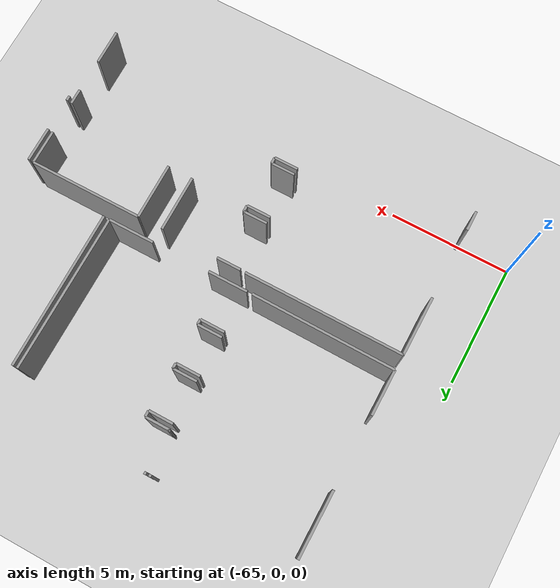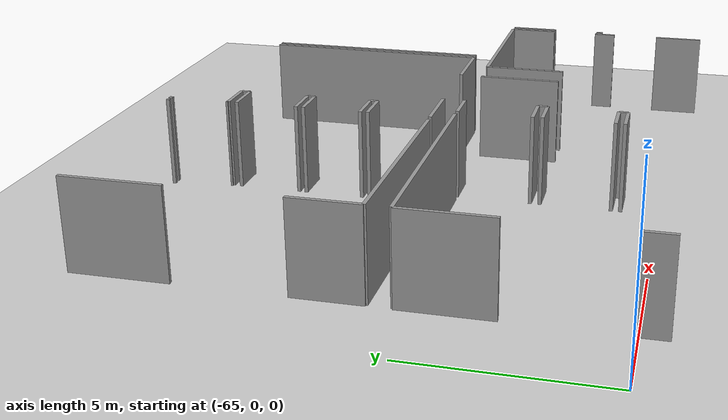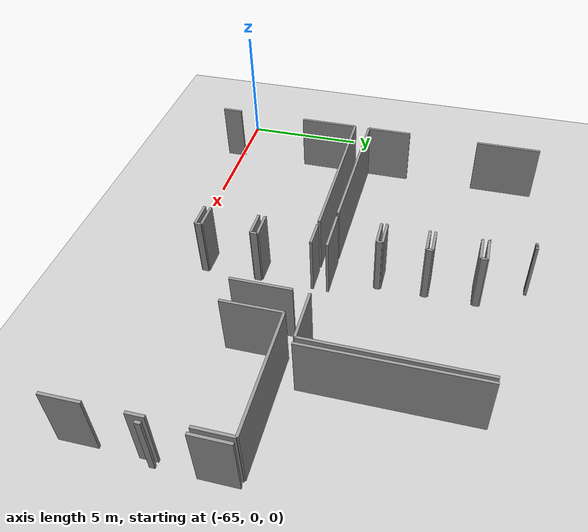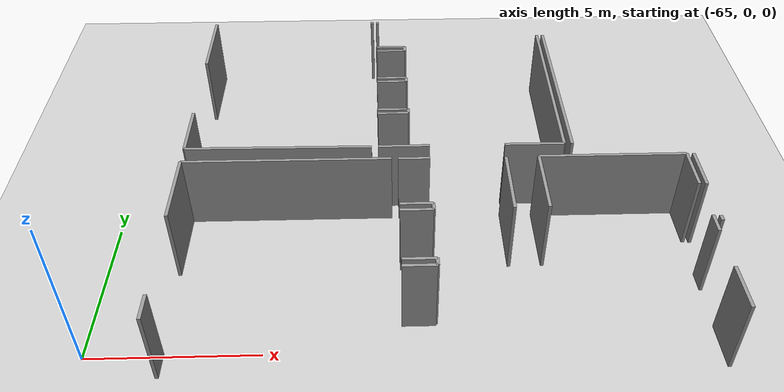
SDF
<sdf version="1.6">
 <world name="default">
  <model name="ground_plane">
   <static>1</static>
   <link name="link">
    <collision name="collision">
     <geometry><plane><normal>0 0 1</normal><size>100 100</size></plane></geometry>
     <surface><friction><ode><mu>100</mu><mu2>50</mu2></ode></friction></surface>
    </collision>
    <visual name="visual">
     <cast_shadows>0</cast_shadows>
     <geometry><plane><normal>0 0 1</normal><size>100 100</size></plane></geometry>
     <material>
      <script><uri>file://media/materials/scripts/gazebo.material</uri><name>Gazebo/Grey</name></script>
     </material>
    </visual>
   </link>
  </model>
  <model name="50010539">
   <static>1</static>
   <link name="Wall_23">
    <collision name="Wall_23_Collision">
     <geometry><box><size>6.4226010518 0.1 2.5</size></box></geometry>
     <pose>3.2113005259 0 1.25 0 0 0</pose>
    </collision>
    <visual name="Wall_23_Visual">
     <pose>3.2113005259 0 1.25 0 0 0</pose>
     <geometry><box><size>6.4226010518 0.1 2.5</size></box></geometry>
     <material>
      <script><uri>file://media/materials/scripts/gazebo.material</uri><name>Gazebo/Grey</name></script>
      <ambient>1 1 1 1</ambient>
     </material>
    </visual>
    <pose>12.1843957217 -16.7629125276 0 0 0 1.57079632679</pose>
   </link>
   <link name="Wall_29">
    <collision name="Wall_29_Collision">
     <geometry><box><size>0.101750463657 0.1 2.5</size></box></geometry>
     <pose>0.0508752318285 0 1.25 0 0 0</pose>
    </collision>
    <visual name="Wall_29_Visual">
     <pose>0.0508752318285 0 1.25 0 0 0</pose>
     <geometry><box><size>0.101750463657 0.1 2.5</size></box></geometry>
     <material>
      <script><uri>file://media/materials/scripts/gazebo.material</uri><name>Gazebo/Grey</name></script>
      <ambient>1 1 1 1</ambient>
     </material>
    </visual>
    <pose>5.87434262341 -9.3689184726 0 0 0 1.57079632679</pose>
   </link>
   <link name="Wall_31">
    <collision name="Wall_31_Collision">
     <geometry><box><size>2.65097431468 0.1 2.5</size></box></geometry>
     <pose>1.32548715734 0 1.25 0 0 0</pose>
    </collision>
    <visual name="Wall_31_Visual">
     <pose>1.32548715734 0 1.25 0 0 0</pose>
     <geometry><box><size>2.65097431468 0.1 2.5</size></box></geometry>
     <material>
      <script><uri>file://media/materials/scripts/gazebo.material</uri><name>Gazebo/Grey</name></script>
      <ambient>1 1 1 1</ambient>
     </material>
    </visual>
    <pose>0.0166408373771 -9.26716800894 0 0 0 -1.57079632679</pose>
   </link>
   <link name="Wall_32">
    <collision name="Wall_32_Collision">
     <geometry><box><size>1.85424658926 0.1 2.5</size></box></geometry>
     <pose>0.927123294632 0 1.25 0 0 0</pose>
    </collision>
    <visual name="Wall_32_Visual">
     <pose>0.927123294632 0 1.25 0 0 0</pose>
     <geometry><box><size>1.85424658926 0.1 2.5</size></box></geometry>
     <material>
      <script><uri>file://media/materials/scripts/gazebo.material</uri><name>Gazebo/Grey</name></script>
      <ambient>1 1 1 1</ambient>
     </material>
    </visual>
    <pose>0.0166408373771 -14.8506135515 0 0 0 -1.57079632679</pose>
   </link>
   <link name="Wall_33">
    <collision name="Wall_33_Collision">
     <geometry><box><size>5.85789444382 0.1 2.5</size></box></geometry>
     <pose>2.92894722191 0 1.25 0 0 0</pose>
    </collision>
    <visual name="Wall_33_Visual">
     <pose>2.92894722191 0 1.25 0 0 0</pose>
     <geometry><box><size>5.85789444382 0.1 2.5</size></box></geometry>
     <material>
      <script><uri>file://media/materials/scripts/gazebo.material</uri><name>Gazebo/Grey</name></script>
      <ambient>1 1 1 1</ambient>
     </material>
    </visual>
    <pose>0.0166408373771 -16.7048601407 0 0 0 -0.00811033330518</pose>
   </link>
   <link name="Wall_34">
    <collision name="Wall_34_Collision">
     <geometry><box><size>1.87749294987 0.1 2.5</size></box></geometry>
     <pose>0.938746474937 0 1.25 0 0 0</pose>
    </collision>
    <visual name="Wall_34_Visual">
     <pose>0.938746474937 0 1.25 0 0 0</pose>
     <geometry><box><size>1.87749294987 0.1 2.5</size></box></geometry>
     <material>
      <script><uri>file://media/materials/scripts/gazebo.material</uri><name>Gazebo/Grey</name></script>
      <ambient>1 1 1 1</ambient>
     </material>
    </visual>
    <pose>11.9382129519 -16.7394121084 0 0 0 3.14159265359</pose>
   </link>
   <link name="Wall_35">
    <collision name="Wall_35_Collision">
     <geometry><box><size>1.62038566093 0.1 2.5</size></box></geometry>
     <pose>0.810192830467 0 1.25 0 0 0</pose>
    </collision>
    <visual name="Wall_35_Visual">
     <pose>0.810192830467 0 1.25 0 0 0</pose>
     <geometry><box><size>1.62038566093 0.1 2.5</size></box></geometry>
     <material>
      <script><uri>file://media/materials/scripts/gazebo.material</uri><name>Gazebo/Grey</name></script>
      <ambient>1 1 1 1</ambient>
     </material>
    </visual>
    <pose>7.69251289347 -16.7394121084 0 0 0 3.14159265359</pose>
   </link>
   <link name="Wall_36">
    <collision name="Wall_36_Collision">
     <geometry><box><size>0.997815096161 0.1 2.5</size></box></geometry>
     <pose>0.498907548081 0 1.25 0 0 0</pose>
    </collision>
    <visual name="Wall_36_Visual">
     <pose>0.498907548081 0 1.25 0 0 0</pose>
     <geometry><box><size>0.997815096161 0.1 2.5</size></box></geometry>
     <material>
      <script><uri>file://media/materials/scripts/gazebo.material</uri><name>Gazebo/Grey</name></script>
      <ambient>1 1 1 1</ambient>
     </material>
    </visual>
    <pose>6.07212723254 -15.014735398 0 0 0 0.0</pose>
   </link>
   <link name="Wall_37">
    <collision name="Wall_37_Collision">
     <geometry><box><size>0.208455069739 0.1 2.5</size></box></geometry>
     <pose>0.10422753487 0 1.25 0 0 0</pose>
    </collision>
    <visual name="Wall_37_Visual">
     <pose>0.10422753487 0 1.25 0 0 0</pose>
     <geometry><box><size>0.208455069739 0.1 2.5</size></box></geometry>
     <material>
      <script><uri>file://media/materials/scripts/gazebo.material</uri><name>Gazebo/Grey</name></script>
      <ambient>1 1 1 1</ambient>
     </material>
    </visual>
    <pose>7.0699423287 -15.014735398 0 0 0 1.57079632679</pose>
   </link>
   <link name="Wall_38">
    <collision name="Wall_38_Collision">
     <geometry><box><size>1.01674246081 0.1 2.5</size></box></geometry>
     <pose>0.508371230406 0 1.25 0 0 0</pose>
    </collision>
    <visual name="Wall_38_Visual">
     <pose>0.508371230406 0 1.25 0 0 0</pose>
     <geometry><box><size>1.01674246081 0.1 2.5</size></box></geometry>
     <material>
      <script><uri>file://media/materials/scripts/gazebo.material</uri><name>Gazebo/Grey</name></script>
      <ambient>1 1 1 1</ambient>
     </material>
    </visual>
    <pose>7.0699423287 -14.8062803282 0 0 0 3.14159265359</pose>
   </link>
   <link name="Wall_39">
    <collision name="Wall_39_Collision">
     <geometry><box><size>0.999720535555 0.1 2.5</size></box></geometry>
     <pose>0.499860267778 0 1.25 0 0 0</pose>
    </collision>
    <visual name="Wall_39_Visual">
     <pose>0.499860267778 0 1.25 0 0 0</pose>
     <geometry><box><size>0.999720535555 0.1 2.5</size></box></geometry>
     <material>
      <script><uri>file://media/materials/scripts/gazebo.material</uri><name>Gazebo/Grey</name></script>
      <ambient>1 1 1 1</ambient>
     </material>
    </visual>
    <pose>6.05319986789 -13.1913569269 0 0 0 0.0</pose>
   </link>
   <link name="Wall_40">
    <collision name="Wall_40_Collision">
     <geometry><box><size>0.214171387922 0.1 2.5</size></box></geometry>
     <pose>0.107085693961 0 1.25 0 0 0</pose>
    </collision>
    <visual name="Wall_40_Visual">
     <pose>0.107085693961 0 1.25 0 0 0</pose>
     <geometry><box><size>0.214171387922 0.1 2.5</size></box></geometry>
     <material>
      <script><uri>file://media/materials/scripts/gazebo.material</uri><name>Gazebo/Grey</name></script>
      <ambient>1 1 1 1</ambient>
     </material>
    </visual>
    <pose>7.05292040345 -13.1913569269 0 0 0 1.57079632679</pose>
   </link>
   <link name="Wall_41">
    <collision name="Wall_41_Collision">
     <geometry><box><size>0.988541957775 0.1 2.5</size></box></geometry>
     <pose>0.494270978888 0 1.25 0 0 0</pose>
    </collision>
    <visual name="Wall_41_Visual">
     <pose>0.494270978888 0 1.25 0 0 0</pose>
     <geometry><box><size>0.988541957775 0.1 2.5</size></box></geometry>
     <material>
      <script><uri>file://media/materials/scripts/gazebo.material</uri><name>Gazebo/Grey</name></script>
      <ambient>1 1 1 1</ambient>
     </material>
    </visual>
    <pose>7.05292040345 -12.977185539 0 0 0 3.14159265359</pose>
   </link>
   <link name="Wall_42">
    <collision name="Wall_42_Collision">
     <geometry><box><size>0.994004217373 0.1 2.5</size></box></geometry>
     <pose>0.497002108686 0 1.25 0 0 0</pose>
    </collision>
    <visual name="Wall_42_Visual">
     <pose>0.497002108686 0 1.25 0 0 0</pose>
     <geometry><box><size>0.994004217373 0.1 2.5</size></box></geometry>
     <material>
      <script><uri>file://media/materials/scripts/gazebo.material</uri><name>Gazebo/Grey</name></script>
      <ambient>1 1 1 1</ambient>
     </material>
    </visual>
    <pose>6.06437844567 -11.2582251467 0 0 0 0.0</pose>
   </link>
   <link name="Wall_43">
    <collision name="Wall_43_Collision">
     <geometry><box><size>0.2416097152 0.1 2.5</size></box></geometry>
     <pose>0.1208048576 0 1.25 0 0 0</pose>
    </collision>
    <visual name="Wall_43_Visual">
     <pose>0.1208048576 0 1.25 0 0 0</pose>
     <geometry><box><size>0.2416097152 0.1 2.5</size></box></geometry>
     <material>
      <script><uri>file://media/materials/scripts/gazebo.material</uri><name>Gazebo/Grey</name></script>
      <ambient>1 1 1 1</ambient>
     </material>
    </visual>
    <pose>7.05838266304 -11.2582251467 0 0 0 1.57079632679</pose>
   </link>
   <link name="Wall_44">
    <collision name="Wall_44_Collision">
     <geometry><box><size>0.988541957775 0.1 2.5</size></box></geometry>
     <pose>0.494270978888 0 1.25 0 0 0</pose>
    </collision>
    <visual name="Wall_44_Visual">
     <pose>0.494270978888 0 1.25 0 0 0</pose>
     <geometry><box><size>0.988541957775 0.1 2.5</size></box></geometry>
     <material>
      <script><uri>file://media/materials/scripts/gazebo.material</uri><name>Gazebo/Grey</name></script>
      <ambient>1 1 1 1</ambient>
     </material>
    </visual>
    <pose>7.05838266304 -11.0166154315 0 0 0 3.14159265359</pose>
   </link>
   <link name="Wall_45">
    <collision name="Wall_45_Collision">
     <geometry><box><size>0.0603389141536 0.1 2.5</size></box></geometry>
     <pose>0.0301694570768 0 1.25 0 0 0</pose>
    </collision>
    <visual name="Wall_45_Visual">
     <pose>0.0301694570768 0 1.25 0 0 0</pose>
     <geometry><box><size>0.0603389141536 0.1 2.5</size></box></geometry>
     <material>
      <script><uri>file://media/materials/scripts/gazebo.material</uri><name>Gazebo/Grey</name></script>
      <ambient>1 1 1 1</ambient>
     </material>
    </visual>
    <pose>6.06984070527 -11.0166154315 0 0 0 1.57079632679</pose>
   </link>
   <link name="Wall_46">
    <collision name="Wall_46_Collision">
     <geometry><box><size>0.108991133355 0.1 2.5</size></box></geometry>
     <pose>0.0544955666777 0 1.25 0 0 0</pose>
    </collision>
    <visual name="Wall_46_Visual">
     <pose>0.0544955666777 0 1.25 0 0 0</pose>
     <geometry><box><size>0.108991133355 0.1 2.5</size></box></geometry>
     <material>
      <script><uri>file://media/materials/scripts/gazebo.material</uri><name>Gazebo/Grey</name></script>
      <ambient>1 1 1 1</ambient>
     </material>
    </visual>
    <pose>6.06984070527 -9.3689184726 0 0 0 1.57079632679</pose>
   </link>
   <link name="Wall_61">
    <collision name="Wall_61_Collision">
     <geometry><box><size>6.3992202395 0.1 2.5</size></box></geometry>
     <pose>3.19961011975 0 1.25 0 0 0</pose>
    </collision>
    <visual name="Wall_61_Visual">
     <pose>3.19961011975 0 1.25 0 0 0</pose>
     <geometry><box><size>6.3992202395 0.1 2.5</size></box></geometry>
     <material>
      <script><uri>file://media/materials/scripts/gazebo.material</uri><name>Gazebo/Grey</name></script>
      <ambient>1 1 1 1</ambient>
     </material>
    </visual>
    <pose>11.9773379741 -10.3403114758 0 0 0 -1.57691039453</pose>
   </link>
   <link name="Wall_63">
    <collision name="Wall_63_Collision">
     <geometry><box><size>2.28716241965 0.1 2.5</size></box></geometry>
     <pose>1.14358120983 0 1.25 0 0 0</pose>
    </collision>
    <visual name="Wall_63_Visual">
     <pose>1.14358120983 0 1.25 0 0 0</pose>
     <geometry><box><size>2.28716241965 0.1 2.5</size></box></geometry>
     <material>
      <script><uri>file://media/materials/scripts/gazebo.material</uri><name>Gazebo/Grey</name></script>
      <ambient>1 1 1 1</ambient>
     </material>
    </visual>
    <pose>10.0250247707 -19.6386016615 0 0 0 1.57079632679</pose>
   </link>
   <link name="Wall_64">
    <collision name="Wall_64_Collision">
     <geometry><box><size>0.985366225452 0.1 2.5</size></box></geometry>
     <pose>0.492683112726 0 1.25 0 0 0</pose>
    </collision>
    <visual name="Wall_64_Visual">
     <pose>0.492683112726 0 1.25 0 0 0</pose>
     <geometry><box><size>0.985366225452 0.1 2.5</size></box></geometry>
     <material>
      <script><uri>file://media/materials/scripts/gazebo.material</uri><name>Gazebo/Grey</name></script>
      <ambient>1 1 1 1</ambient>
     </material>
    </visual>
    <pose>7.6758720561 -17.3514392419 0 0 0 3.14159265359</pose>
   </link>
   <link name="Wall_65">
    <collision name="Wall_65_Collision">
     <geometry><box><size>0.982952668885 0.1 2.5</size></box></geometry>
     <pose>0.491476334443 0 1.25 0 0 0</pose>
    </collision>
    <visual name="Wall_65_Visual">
     <pose>0.491476334443 0 1.25 0 0 0</pose>
     <geometry><box><size>0.982952668885 0.1 2.5</size></box></geometry>
     <material>
      <script><uri>file://media/materials/scripts/gazebo.material</uri><name>Gazebo/Grey</name></script>
      <ambient>1 1 1 1</ambient>
     </material>
    </visual>
    <pose>6.69050583064 -19.3971189756 0 0 0 0.0</pose>
   </link>
   <link name="Wall_66">
    <collision name="Wall_66_Collision">
     <geometry><box><size>0.263712812174 0.1 2.5</size></box></geometry>
     <pose>0.131856406087 0 1.25 0 0 0</pose>
    </collision>
    <visual name="Wall_66_Visual">
     <pose>0.131856406087 0 1.25 0 0 0</pose>
     <geometry><box><size>0.263712812174 0.1 2.5</size></box></geometry>
     <material>
      <script><uri>file://media/materials/scripts/gazebo.material</uri><name>Gazebo/Grey</name></script>
      <ambient>1 1 1 1</ambient>
     </material>
    </visual>
    <pose>7.67345849953 -19.3971189756 0 0 0 -1.57079632679</pose>
   </link>
   <link name="Wall_67">
    <collision name="Wall_67_Collision">
     <geometry><box><size>0.982952668885 0.1 2.5</size></box></geometry>
     <pose>0.491476334443 0 1.25 0 0 0</pose>
    </collision>
    <visual name="Wall_67_Visual">
     <pose>0.491476334443 0 1.25 0 0 0</pose>
     <geometry><box><size>0.982952668885 0.1 2.5</size></box></geometry>
     <material>
      <script><uri>file://media/materials/scripts/gazebo.material</uri><name>Gazebo/Grey</name></script>
      <ambient>1 1 1 1</ambient>
     </material>
    </visual>
    <pose>7.67345849953 -19.6608317878 0 0 0 3.14159265359</pose>
   </link>
   <link name="Wall_68">
    <collision name="Wall_68_Collision">
     <geometry><box><size>0.979903965855 0.1 2.5</size></box></geometry>
     <pose>0.489951982927 0 1.25 0 0 0</pose>
    </collision>
    <visual name="Wall_68_Visual">
     <pose>0.489951982927 0 1.25 0 0 0</pose>
     <geometry><box><size>0.979903965855 0.1 2.5</size></box></geometry>
     <material>
      <script><uri>file://media/materials/scripts/gazebo.material</uri><name>Gazebo/Grey</name></script>
      <ambient>1 1 1 1</ambient>
     </material>
    </visual>
    <pose>6.69050583064 -21.5976474175 0 0 0 0.0</pose>
   </link>
   <link name="Wall_69">
    <collision name="Wall_69_Collision">
     <geometry><box><size>0.249231472778 0.1 2.5</size></box></geometry>
     <pose>0.124615736389 0 1.25 0 0 0</pose>
    </collision>
    <visual name="Wall_69_Visual">
     <pose>0.124615736389 0 1.25 0 0 0</pose>
     <geometry><box><size>0.249231472778 0.1 2.5</size></box></geometry>
     <material>
      <script><uri>file://media/materials/scripts/gazebo.material</uri><name>Gazebo/Grey</name></script>
      <ambient>1 1 1 1</ambient>
     </material>
    </visual>
    <pose>7.6704097965 -21.5976474175 0 0 0 -1.57079632679</pose>
   </link>
   <link name="Wall_70">
    <collision name="Wall_70_Collision">
     <geometry><box><size>0.980030995147 0.1 2.5</size></box></geometry>
     <pose>0.490015497574 0 1.25 0 0 0</pose>
    </collision>
    <visual name="Wall_70_Visual">
     <pose>0.490015497574 0 1.25 0 0 0</pose>
     <geometry><box><size>0.980030995147 0.1 2.5</size></box></geometry>
     <material>
      <script><uri>file://media/materials/scripts/gazebo.material</uri><name>Gazebo/Grey</name></script>
      <ambient>1 1 1 1</ambient>
     </material>
    </visual>
    <pose>7.6704097965 -21.8468788903 0 0 0 3.14159265359</pose>
   </link>
   <link name="Wall_74">
    <collision name="Wall_74_Collision">
     <geometry><box><size>6.48954548919 0.1 2.5</size></box></geometry>
     <pose>3.24477274459 0 1.25 0 0 0</pose>
    </collision>
    <visual name="Wall_74_Visual">
     <pose>3.24477274459 0 1.25 0 0 0</pose>
     <geometry><box><size>6.48954548919 0.1 2.5</size></box></geometry>
     <material>
      <script><uri>file://media/materials/scripts/gazebo.material</uri><name>Gazebo/Grey</name></script>
      <ambient>1 1 1 1</ambient>
     </material>
    </visual>
    <pose>6.48954548919 -17.3378471075 0 0 0 3.14159265359</pose>
   </link>
   <link name="Wall_75">
    <collision name="Wall_75_Collision">
     <geometry><box><size>2.4072051015 0.1 2.5</size></box></geometry>
     <pose>1.20360255075 0 1.25 0 0 0</pose>
    </collision>
    <visual name="Wall_75_Visual">
     <pose>1.20360255075 0 1.25 0 0 0</pose>
     <geometry><box><size>2.4072051015 0.1 2.5</size></box></geometry>
     <material>
      <script><uri>file://media/materials/scripts/gazebo.material</uri><name>Gazebo/Grey</name></script>
      <ambient>1 1 1 1</ambient>
     </material>
    </visual>
    <pose>0.0 -17.3378471075 0 0 0 -1.57079632679</pose>
   </link>
   <link name="Wall_76">
    <collision name="Wall_76_Collision">
     <geometry><box><size>0.822133584004 0.1 2.5</size></box></geometry>
     <pose>0.411066792002 0 1.25 0 0 0</pose>
    </collision>
    <visual name="Wall_76_Visual">
     <pose>0.411066792002 0 1.25 0 0 0</pose>
     <geometry><box><size>0.822133584004 0.1 2.5</size></box></geometry>
     <material>
      <script><uri>file://media/materials/scripts/gazebo.material</uri><name>Gazebo/Grey</name></script>
      <ambient>1 1 1 1</ambient>
     </material>
    </visual>
    <pose>0.0 -22.6989913874 0 0 0 -1.57079632679</pose>
   </link>
   <link name="Wall_86">
    <collision name="Wall_86_Collision">
     <geometry><box><size>2.28652727319 0.1 2.5</size></box></geometry>
     <pose>1.14326363659 0 1.25 0 0 0</pose>
    </collision>
    <visual name="Wall_86_Visual">
     <pose>1.14326363659 0 1.25 0 0 0</pose>
     <geometry><box><size>2.28652727319 0.1 2.5</size></box></geometry>
     <material>
      <script><uri>file://media/materials/scripts/gazebo.material</uri><name>Gazebo/Grey</name></script>
      <ambient>1 1 1 1</ambient>
     </material>
    </visual>
    <pose>11.0501511649 -19.6354259292 0 0 0 1.57079632679</pose>
   </link>
   <link name="Wall_87">
    <collision name="Wall_87_Collision">
     <geometry><box><size>4.60366860598 0.1 2.5</size></box></geometry>
     <pose>2.30183430299 0 1.25 0 0 0</pose>
    </collision>
    <visual name="Wall_87_Visual">
     <pose>2.30183430299 0 1.25 0 0 0</pose>
     <geometry><box><size>4.60366860598 0.1 2.5</size></box></geometry>
     <material>
      <script><uri>file://media/materials/scripts/gazebo.material</uri><name>Gazebo/Grey</name></script>
      <ambient>1 1 1 1</ambient>
     </material>
    </visual>
    <pose>11.0501511649 -17.348898656 0 0 0 0.0</pose>
   </link>
   <link name="Wall_88">
    <collision name="Wall_88_Collision">
     <geometry><box><size>1.40367368715 0.1 2.5</size></box></geometry>
     <pose>0.701836843576 0 1.25 0 0 0</pose>
    </collision>
    <visual name="Wall_88_Visual">
     <pose>0.701836843576 0 1.25 0 0 0</pose>
     <geometry><box><size>1.40367368715 0.1 2.5</size></box></geometry>
     <material>
      <script><uri>file://media/materials/scripts/gazebo.material</uri><name>Gazebo/Grey</name></script>
      <ambient>1 1 1 1</ambient>
     </material>
    </visual>
    <pose>15.6538197708 -17.348898656 0 0 0 -1.57079632679</pose>
   </link>
   <link name="Wall_89">
    <collision name="Wall_89_Collision">
     <geometry><box><size>0.639084372856 0.1 2.5</size></box></geometry>
     <pose>0.319542186428 0 1.25 0 0 0</pose>
    </collision>
    <visual name="Wall_89_Visual">
     <pose>0.319542186428 0 1.25 0 0 0</pose>
     <geometry><box><size>0.639084372856 0.1 2.5</size></box></geometry>
     <material>
      <script><uri>file://media/materials/scripts/gazebo.material</uri><name>Gazebo/Grey</name></script>
      <ambient>1 1 1 1</ambient>
     </material>
    </visual>
    <pose>15.6538197708 -20.1107695435 0 0 0 -1.57079632679</pose>
   </link>
   <link name="Wall_90">
    <collision name="Wall_90_Collision">
     <geometry><box><size>1.41792214125 0.1 2.5</size></box></geometry>
     <pose>0.708961070625 0 1.25 0 0 0</pose>
    </collision>
    <visual name="Wall_90_Visual">
     <pose>0.708961070625 0 1.25 0 0 0</pose>
     <geometry><box><size>1.41792214125 0.1 2.5</size></box></geometry>
     <material>
      <script><uri>file://media/materials/scripts/gazebo.material</uri><name>Gazebo/Grey</name></script>
      <ambient>1 1 1 1</ambient>
     </material>
    </visual>
    <pose>15.6538197708 -22.122532456 0 0 0 -1.56533141076</pose>
   </link>
   <link name="Wall_92">
    <collision name="Wall_92_Collision">
     <geometry><box><size>0.197911638424 0.1 2.5</size></box></geometry>
     <pose>0.0989558192119 0 1.25 0 0 0</pose>
    </collision>
    <visual name="Wall_92_Visual">
     <pose>0.0989558192119 0 1.25 0 0 0</pose>
     <geometry><box><size>0.197911638424 0.1 2.5</size></box></geometry>
     <material>
      <script><uri>file://media/materials/scripts/gazebo.material</uri><name>Gazebo/Grey</name></script>
      <ambient>1 1 1 1</ambient>
     </material>
    </visual>
    <pose>15.8698965982 -20.3324356597 0 0 0 1.57079632679</pose>
   </link>
   <link name="Wall_93">
    <collision name="Wall_93_Collision">
     <geometry><box><size>1.41472523564 0.1 2.5</size></box></geometry>
     <pose>0.70736261782 0 1.25 0 0 0</pose>
    </collision>
    <visual name="Wall_93_Visual">
     <pose>0.70736261782 0 1.25 0 0 0</pose>
     <geometry><box><size>1.41472523564 0.1 2.5</size></box></geometry>
     <material>
      <script><uri>file://media/materials/scripts/gazebo.material</uri><name>Gazebo/Grey</name></script>
      <ambient>1 1 1 1</ambient>
     </material>
    </visual>
    <pose>15.8698965982 -18.7725159422 0 0 0 1.57079632679</pose>
   </link>
   <pose>-62.8 22.8208416961 0 0 0 0</pose>
  </model>
 </world>
</sdf>
